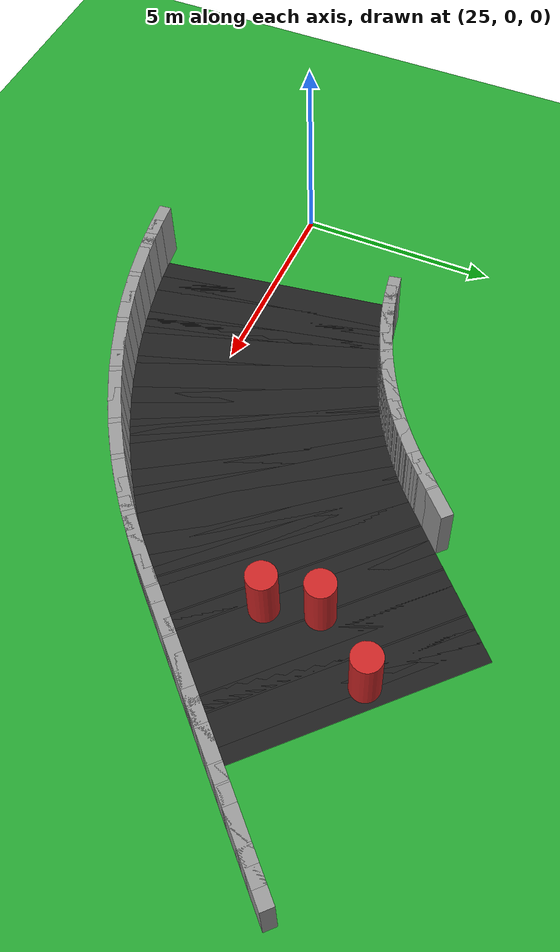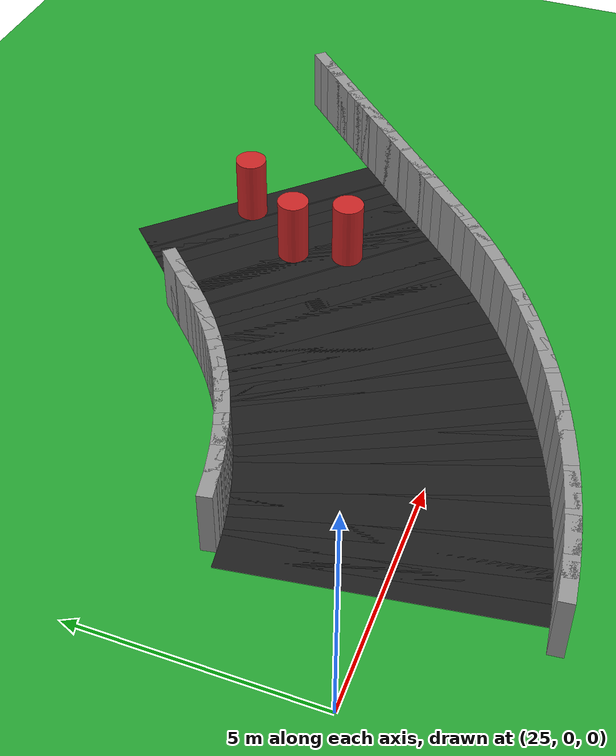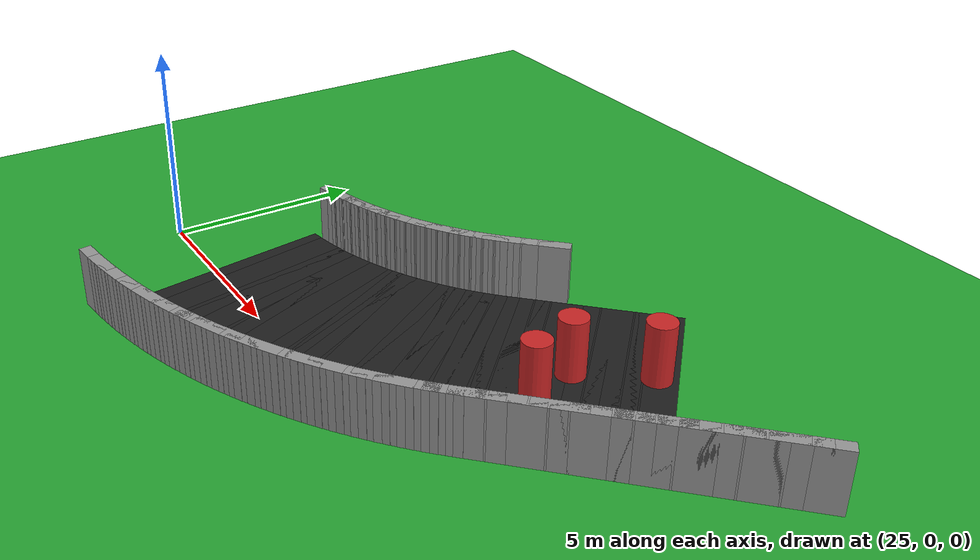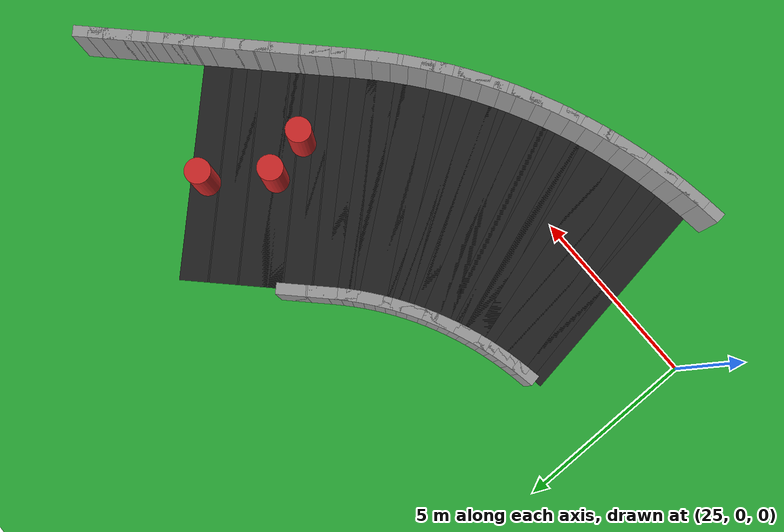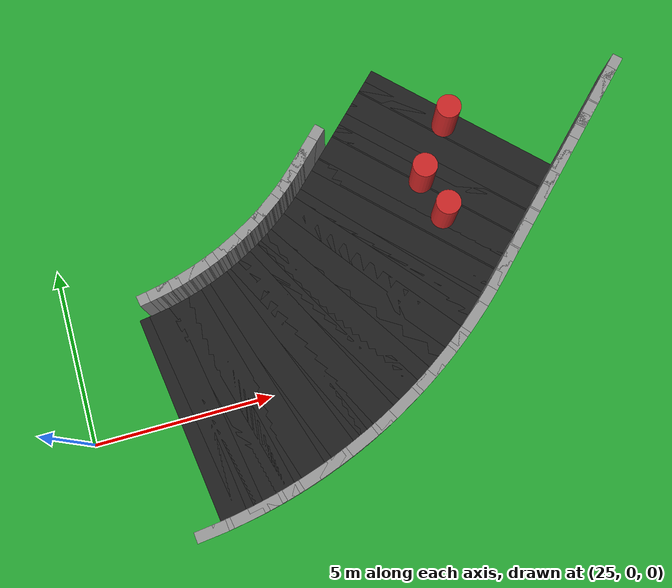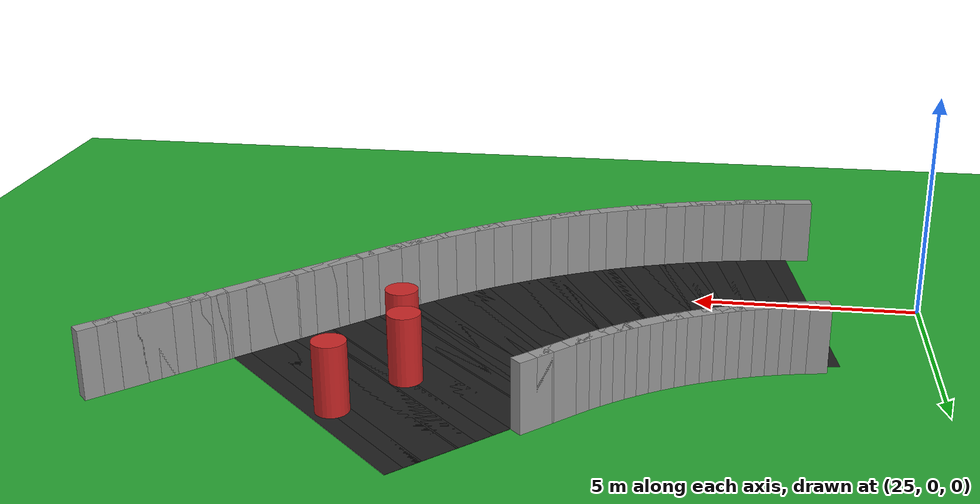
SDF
<sdf version="1.6">
 <world name="obstacle_mid">
  <include><uri>model://sun</uri></include>
  <model name="ground_plane">
   <static>true</static>
   <link name="link">
    <collision name="collision">
     <surface><friction><ode><mu>100</mu><mu2>50</mu2></ode></friction></surface>
     <geometry><plane><normal>0 0 1</normal><size>120 120</size></plane></geometry>
    </collision>
    <visual name="visual">
     <geometry><plane><normal>0 0 1</normal><size>120 120</size></plane></geometry>
     <material>
      <script><uri>file://media/materials/scripts/gazebo.material</uri><name>Gazebo/Green</name></script>
     </material>
    </visual>
   </link>
  </model>
  <model name="curbR_68">
   <static>true</static>
   <pose>27.731 -3.049 0.750 0 0 0.11454</pose>
   <link name="link">
    <collision name="collision"><geometry><box><size>0.856 0.300 1.500</size></box></geometry></collision>
    <visual name="visual">
     <geometry><box><size>0.856 0.300 1.500</size></box></geometry>
     <material>
      <script><uri>file://media/materials/scripts/gazebo.material</uri><name>Gazebo/Grey</name></script>
     </material>
    </visual>
   </link>
  </model>
  <model name="asphalt_69">
   <static>true</static>
   <pose>27.761 0.131 0.005 0 0 0.14726</pose>
   <link name="link">
    <visual name="visual">
     <geometry><box><size>0.753 6.000 0.010</size></box></geometry>
     <material>
      <script><uri>file://media/materials/scripts/gazebo.material</uri><name>Gazebo/Black</name></script>
     </material>
    </visual>
   </link>
  </model>
  <model name="curbR_69">
   <static>true</static>
   <pose>28.223 -2.984 0.750 0 0 0.14726</pose>
   <link name="link">
    <collision name="collision"><geometry><box><size>0.856 0.300 1.500</size></box></geometry></collision>
    <visual name="visual">
     <geometry><box><size>0.856 0.300 1.500</size></box></geometry>
     <material>
      <script><uri>file://media/materials/scripts/gazebo.material</uri><name>Gazebo/Grey</name></script>
     </material>
    </visual>
   </link>
  </model>
  <model name="asphalt_70">
   <static>true</static>
   <pose>28.148 0.195 0.005 0 0 0.17999</pose>
   <link name="link">
    <visual name="visual">
     <geometry><box><size>0.753 6.000 0.010</size></box></geometry>
     <material>
      <script><uri>file://media/materials/scripts/gazebo.material</uri><name>Gazebo/Black</name></script>
     </material>
    </visual>
   </link>
  </model>
  <model name="curbL_70">
   <static>true</static>
   <pose>27.584 3.294 0.750 0 0 0.17999</pose>
   <link name="link">
    <collision name="collision"><geometry><box><size>0.650 0.300 1.500</size></box></geometry></collision>
    <visual name="visual">
     <geometry><box><size>0.650 0.300 1.500</size></box></geometry>
     <material>
      <script><uri>file://media/materials/scripts/gazebo.material</uri><name>Gazebo/Grey</name></script>
     </material>
    </visual>
   </link>
  </model>
  <model name="curbR_70">
   <static>true</static>
   <pose>28.712 -2.903 0.750 0 0 0.17999</pose>
   <link name="link">
    <collision name="collision"><geometry><box><size>0.856 0.300 1.500</size></box></geometry></collision>
    <visual name="visual">
     <geometry><box><size>0.856 0.300 1.500</size></box></geometry>
     <material>
      <script><uri>file://media/materials/scripts/gazebo.material</uri><name>Gazebo/Grey</name></script>
     </material>
    </visual>
   </link>
  </model>
  <model name="asphalt_71">
   <static>true</static>
   <pose>28.533 0.272 0.005 0 0 0.21271</pose>
   <link name="link">
    <visual name="visual">
     <geometry><box><size>0.753 6.000 0.010</size></box></geometry>
     <material>
      <script><uri>file://media/materials/scripts/gazebo.material</uri><name>Gazebo/Black</name></script>
     </material>
    </visual>
   </link>
  </model>
  <model name="curbL_71">
   <static>true</static>
   <pose>27.868 3.351 0.750 0 0 0.21271</pose>
   <link name="link">
    <collision name="collision"><geometry><box><size>0.650 0.300 1.500</size></box></geometry></collision>
    <visual name="visual">
     <geometry><box><size>0.650 0.300 1.500</size></box></geometry>
     <material>
      <script><uri>file://media/materials/scripts/gazebo.material</uri><name>Gazebo/Grey</name></script>
     </material>
    </visual>
   </link>
  </model>
  <model name="curbR_71">
   <static>true</static>
   <pose>29.198 -2.807 0.750 0 0 0.21271</pose>
   <link name="link">
    <collision name="collision"><geometry><box><size>0.856 0.300 1.500</size></box></geometry></collision>
    <visual name="visual">
     <geometry><box><size>0.856 0.300 1.500</size></box></geometry>
     <material>
      <script><uri>file://media/materials/scripts/gazebo.material</uri><name>Gazebo/Grey</name></script>
     </material>
    </visual>
   </link>
  </model>
  <model name="asphalt_72">
   <static>true</static>
   <pose>28.916 0.361 0.005 0 0 0.24544</pose>
   <link name="link">
    <visual name="visual">
     <geometry><box><size>0.753 6.000 0.010</size></box></geometry>
     <material>
      <script><uri>file://media/materials/scripts/gazebo.material</uri><name>Gazebo/Black</name></script>
     </material>
    </visual>
   </link>
  </model>
  <model name="curbL_72">
   <static>true</static>
   <pose>28.150 3.416 0.750 0 0 0.24544</pose>
   <link name="link">
    <collision name="collision"><geometry><box><size>0.650 0.300 1.500</size></box></geometry></collision>
    <visual name="visual">
     <geometry><box><size>0.650 0.300 1.500</size></box></geometry>
     <material>
      <script><uri>file://media/materials/scripts/gazebo.material</uri><name>Gazebo/Grey</name></script>
     </material>
    </visual>
   </link>
  </model>
  <model name="curbR_72">
   <static>true</static>
   <pose>29.681 -2.694 0.750 0 0 0.24544</pose>
   <link name="link">
    <collision name="collision"><geometry><box><size>0.856 0.300 1.500</size></box></geometry></collision>
    <visual name="visual">
     <geometry><box><size>0.856 0.300 1.500</size></box></geometry>
     <material>
      <script><uri>file://media/materials/scripts/gazebo.material</uri><name>Gazebo/Grey</name></script>
     </material>
    </visual>
   </link>
  </model>
  <model name="asphalt_73">
   <static>true</static>
   <pose>29.295 0.463 0.005 0 0 0.27816</pose>
   <link name="link">
    <visual name="visual">
     <geometry><box><size>0.753 6.000 0.010</size></box></geometry>
     <material>
      <script><uri>file://media/materials/scripts/gazebo.material</uri><name>Gazebo/Black</name></script>
     </material>
    </visual>
   </link>
  </model>
  <model name="curbL_73">
   <static>true</static>
   <pose>28.430 3.491 0.750 0 0 0.27816</pose>
   <link name="link">
    <collision name="collision"><geometry><box><size>0.650 0.300 1.500</size></box></geometry></collision>
    <visual name="visual">
     <geometry><box><size>0.650 0.300 1.500</size></box></geometry>
     <material>
      <script><uri>file://media/materials/scripts/gazebo.material</uri><name>Gazebo/Grey</name></script>
     </material>
    </visual>
   </link>
  </model>
  <model name="curbR_73">
   <static>true</static>
   <pose>30.160 -2.566 0.750 0 0 0.27816</pose>
   <link name="link">
    <collision name="collision"><geometry><box><size>0.856 0.300 1.500</size></box></geometry></collision>
    <visual name="visual">
     <geometry><box><size>0.856 0.300 1.500</size></box></geometry>
     <material>
      <script><uri>file://media/materials/scripts/gazebo.material</uri><name>Gazebo/Grey</name></script>
     </material>
    </visual>
   </link>
  </model>
  <model name="asphalt_74">
   <static>true</static>
   <pose>29.671 0.577 0.005 0 0 0.31089</pose>
   <link name="link">
    <visual name="visual">
     <geometry><box><size>0.753 6.000 0.010</size></box></geometry>
     <material>
      <script><uri>file://media/materials/scripts/gazebo.material</uri><name>Gazebo/Black</name></script>
     </material>
    </visual>
   </link>
  </model>
  <model name="curbL_74">
   <static>true</static>
   <pose>28.707 3.575 0.750 0 0 0.31089</pose>
   <link name="link">
    <collision name="collision"><geometry><box><size>0.650 0.300 1.500</size></box></geometry></collision>
    <visual name="visual">
     <geometry><box><size>0.650 0.300 1.500</size></box></geometry>
     <material>
      <script><uri>file://media/materials/scripts/gazebo.material</uri><name>Gazebo/Grey</name></script>
     </material>
    </visual>
   </link>
  </model>
  <model name="curbR_74">
   <static>true</static>
   <pose>30.634 -2.422 0.750 0 0 0.31089</pose>
   <link name="link">
    <collision name="collision"><geometry><box><size>0.856 0.300 1.500</size></box></geometry></collision>
    <visual name="visual">
     <geometry><box><size>0.856 0.300 1.500</size></box></geometry>
     <material>
      <script><uri>file://media/materials/scripts/gazebo.material</uri><name>Gazebo/Grey</name></script>
     </material>
    </visual>
   </link>
  </model>
  <model name="asphalt_75">
   <static>true</static>
   <pose>30.042 0.703 0.005 0 0 0.34361</pose>
   <link name="link">
    <visual name="visual">
     <geometry><box><size>0.753 6.000 0.010</size></box></geometry>
     <material>
      <script><uri>file://media/materials/scripts/gazebo.material</uri><name>Gazebo/Black</name></script>
     </material>
    </visual>
   </link>
  </model>
  <model name="curbL_75">
   <static>true</static>
   <pose>28.981 3.668 0.750 0 0 0.34361</pose>
   <link name="link">
    <collision name="collision"><geometry><box><size>0.650 0.300 1.500</size></box></geometry></collision>
    <visual name="visual">
     <geometry><box><size>0.650 0.300 1.500</size></box></geometry>
     <material>
      <script><uri>file://media/materials/scripts/gazebo.material</uri><name>Gazebo/Grey</name></script>
     </material>
    </visual>
   </link>
  </model>
  <model name="curbR_75">
   <static>true</static>
   <pose>31.103 -2.262 0.750 0 0 0.34361</pose>
   <link name="link">
    <collision name="collision"><geometry><box><size>0.856 0.300 1.500</size></box></geometry></collision>
    <visual name="visual">
     <geometry><box><size>0.856 0.300 1.500</size></box></geometry>
     <material>
      <script><uri>file://media/materials/scripts/gazebo.material</uri><name>Gazebo/Grey</name></script>
     </material>
    </visual>
   </link>
  </model>
  <model name="asphalt_76">
   <static>true</static>
   <pose>30.410 0.841 0.005 0 0 0.37634</pose>
   <link name="link">
    <visual name="visual">
     <geometry><box><size>0.753 6.000 0.010</size></box></geometry>
     <material>
      <script><uri>file://media/materials/scripts/gazebo.material</uri><name>Gazebo/Black</name></script>
     </material>
    </visual>
   </link>
  </model>
  <model name="curbL_76">
   <static>true</static>
   <pose>29.252 3.770 0.750 0 0 0.37634</pose>
   <link name="link">
    <collision name="collision"><geometry><box><size>0.650 0.300 1.500</size></box></geometry></collision>
    <visual name="visual">
     <geometry><box><size>0.650 0.300 1.500</size></box></geometry>
     <material>
      <script><uri>file://media/materials/scripts/gazebo.material</uri><name>Gazebo/Grey</name></script>
     </material>
    </visual>
   </link>
  </model>
  <model name="curbR_76">
   <static>true</static>
   <pose>31.567 -2.088 0.750 0 0 0.37634</pose>
   <link name="link">
    <collision name="collision"><geometry><box><size>0.856 0.300 1.500</size></box></geometry></collision>
    <visual name="visual">
     <geometry><box><size>0.856 0.300 1.500</size></box></geometry>
     <material>
      <script><uri>file://media/materials/scripts/gazebo.material</uri><name>Gazebo/Grey</name></script>
     </material>
    </visual>
   </link>
  </model>
  <model name="asphalt_77">
   <static>true</static>
   <pose>30.773 0.992 0.005 0 0 0.40906</pose>
   <link name="link">
    <visual name="visual">
     <geometry><box><size>0.753 6.000 0.010</size></box></geometry>
     <material>
      <script><uri>file://media/materials/scripts/gazebo.material</uri><name>Gazebo/Black</name></script>
     </material>
    </visual>
   </link>
  </model>
  <model name="curbL_77">
   <static>true</static>
   <pose>29.520 3.881 0.750 0 0 0.40906</pose>
   <link name="link">
    <collision name="collision"><geometry><box><size>0.650 0.300 1.500</size></box></geometry></collision>
    <visual name="visual">
     <geometry><box><size>0.650 0.300 1.500</size></box></geometry>
     <material>
      <script><uri>file://media/materials/scripts/gazebo.material</uri><name>Gazebo/Grey</name></script>
     </material>
    </visual>
   </link>
  </model>
  <model name="curbR_77">
   <static>true</static>
   <pose>32.025 -1.898 0.750 0 0 0.40906</pose>
   <link name="link">
    <collision name="collision"><geometry><box><size>0.856 0.300 1.500</size></box></geometry></collision>
    <visual name="visual">
     <geometry><box><size>0.856 0.300 1.500</size></box></geometry>
     <material>
      <script><uri>file://media/materials/scripts/gazebo.material</uri><name>Gazebo/Grey</name></script>
     </material>
    </visual>
   </link>
  </model>
  <model name="asphalt_78">
   <static>true</static>
   <pose>31.130 1.154 0.005 0 0 0.44179</pose>
   <link name="link">
    <visual name="visual">
     <geometry><box><size>0.753 6.000 0.010</size></box></geometry>
     <material>
      <script><uri>file://media/materials/scripts/gazebo.material</uri><name>Gazebo/Black</name></script>
     </material>
    </visual>
   </link>
  </model>
  <model name="curbL_78">
   <static>true</static>
   <pose>29.784 4.001 0.750 0 0 0.44179</pose>
   <link name="link">
    <collision name="collision"><geometry><box><size>0.650 0.300 1.500</size></box></geometry></collision>
    <visual name="visual">
     <geometry><box><size>0.650 0.300 1.500</size></box></geometry>
     <material>
      <script><uri>file://media/materials/scripts/gazebo.material</uri><name>Gazebo/Grey</name></script>
     </material>
    </visual>
   </link>
  </model>
  <model name="curbR_78">
   <static>true</static>
   <pose>32.477 -1.694 0.750 0 0 0.44179</pose>
   <link name="link">
    <collision name="collision"><geometry><box><size>0.856 0.300 1.500</size></box></geometry></collision>
    <visual name="visual">
     <geometry><box><size>0.856 0.300 1.500</size></box></geometry>
     <material>
      <script><uri>file://media/materials/scripts/gazebo.material</uri><name>Gazebo/Grey</name></script>
     </material>
    </visual>
   </link>
  </model>
  <model name="asphalt_79">
   <static>true</static>
   <pose>31.482 1.327 0.005 0 0 0.47451</pose>
   <link name="link">
    <visual name="visual">
     <geometry><box><size>0.753 6.000 0.010</size></box></geometry>
     <material>
      <script><uri>file://media/materials/scripts/gazebo.material</uri><name>Gazebo/Black</name></script>
     </material>
    </visual>
   </link>
  </model>
  <model name="curbL_79">
   <static>true</static>
   <pose>30.043 4.129 0.750 0 0 0.47451</pose>
   <link name="link">
    <collision name="collision"><geometry><box><size>0.650 0.300 1.500</size></box></geometry></collision>
    <visual name="visual">
     <geometry><box><size>0.650 0.300 1.500</size></box></geometry>
     <material>
      <script><uri>file://media/materials/scripts/gazebo.material</uri><name>Gazebo/Grey</name></script>
     </material>
    </visual>
   </link>
  </model>
  <model name="curbR_79">
   <static>true</static>
   <pose>32.921 -1.474 0.750 0 0 0.47451</pose>
   <link name="link">
    <collision name="collision"><geometry><box><size>0.856 0.300 1.500</size></box></geometry></collision>
    <visual name="visual">
     <geometry><box><size>0.856 0.300 1.500</size></box></geometry>
     <material>
      <script><uri>file://media/materials/scripts/gazebo.material</uri><name>Gazebo/Grey</name></script>
     </material>
    </visual>
   </link>
  </model>
  <model name="asphalt_80">
   <static>true</static>
   <pose>31.829 1.512 0.005 0 0 0.50724</pose>
   <link name="link">
    <visual name="visual">
     <geometry><box><size>0.753 6.000 0.010</size></box></geometry>
     <material>
      <script><uri>file://media/materials/scripts/gazebo.material</uri><name>Gazebo/Black</name></script>
     </material>
    </visual>
   </link>
  </model>
  <model name="curbL_80">
   <static>true</static>
   <pose>30.299 4.265 0.750 0 0 0.50724</pose>
   <link name="link">
    <collision name="collision"><geometry><box><size>0.650 0.300 1.500</size></box></geometry></collision>
    <visual name="visual">
     <geometry><box><size>0.650 0.300 1.500</size></box></geometry>
     <material>
      <script><uri>file://media/materials/scripts/gazebo.material</uri><name>Gazebo/Grey</name></script>
     </material>
    </visual>
   </link>
  </model>
  <model name="curbR_80">
   <static>true</static>
   <pose>33.359 -1.241 0.750 0 0 0.50724</pose>
   <link name="link">
    <collision name="collision"><geometry><box><size>0.856 0.300 1.500</size></box></geometry></collision>
    <visual name="visual">
     <geometry><box><size>0.856 0.300 1.500</size></box></geometry>
     <material>
      <script><uri>file://media/materials/scripts/gazebo.material</uri><name>Gazebo/Grey</name></script>
     </material>
    </visual>
   </link>
  </model>
  <model name="asphalt_81">
   <static>true</static>
   <pose>32.169 1.709 0.005 0 0 0.53996</pose>
   <link name="link">
    <visual name="visual">
     <geometry><box><size>0.753 6.000 0.010</size></box></geometry>
     <material>
      <script><uri>file://media/materials/scripts/gazebo.material</uri><name>Gazebo/Black</name></script>
     </material>
    </visual>
   </link>
  </model>
  <model name="curbL_81">
   <static>true</static>
   <pose>30.549 4.410 0.750 0 0 0.53996</pose>
   <link name="link">
    <collision name="collision"><geometry><box><size>0.650 0.300 1.500</size></box></geometry></collision>
    <visual name="visual">
     <geometry><box><size>0.650 0.300 1.500</size></box></geometry>
     <material>
      <script><uri>file://media/materials/scripts/gazebo.material</uri><name>Gazebo/Grey</name></script>
     </material>
    </visual>
   </link>
  </model>
  <model name="curbR_81">
   <static>true</static>
   <pose>33.788 -0.993 0.750 0 0 0.53996</pose>
   <link name="link">
    <collision name="collision"><geometry><box><size>0.856 0.300 1.500</size></box></geometry></collision>
    <visual name="visual">
     <geometry><box><size>0.856 0.300 1.500</size></box></geometry>
     <material>
      <script><uri>file://media/materials/scripts/gazebo.material</uri><name>Gazebo/Grey</name></script>
     </material>
    </visual>
   </link>
  </model>
  <model name="asphalt_82">
   <static>true</static>
   <pose>32.502 1.916 0.005 0 0 0.57269</pose>
   <link name="link">
    <visual name="visual">
     <geometry><box><size>0.753 6.000 0.010</size></box></geometry>
     <material>
      <script><uri>file://media/materials/scripts/gazebo.material</uri><name>Gazebo/Black</name></script>
     </material>
    </visual>
   </link>
  </model>
  <model name="curbL_82">
   <static>true</static>
   <pose>30.795 4.563 0.750 0 0 0.57269</pose>
   <link name="link">
    <collision name="collision"><geometry><box><size>0.650 0.300 1.500</size></box></geometry></collision>
    <visual name="visual">
     <geometry><box><size>0.650 0.300 1.500</size></box></geometry>
     <material>
      <script><uri>file://media/materials/scripts/gazebo.material</uri><name>Gazebo/Grey</name></script>
     </material>
    </visual>
   </link>
  </model>
  <model name="curbR_82">
   <static>true</static>
   <pose>34.209 -0.731 0.750 0 0 0.57269</pose>
   <link name="link">
    <collision name="collision"><geometry><box><size>0.856 0.300 1.500</size></box></geometry></collision>
    <visual name="visual">
     <geometry><box><size>0.856 0.300 1.500</size></box></geometry>
     <material>
      <script><uri>file://media/materials/scripts/gazebo.material</uri><name>Gazebo/Grey</name></script>
     </material>
    </visual>
   </link>
  </model>
  <model name="asphalt_83">
   <static>true</static>
   <pose>32.829 2.134 0.005 0 0 0.60541</pose>
   <link name="link">
    <visual name="visual">
     <geometry><box><size>0.753 6.000 0.010</size></box></geometry>
     <material>
      <script><uri>file://media/materials/scripts/gazebo.material</uri><name>Gazebo/Black</name></script>
     </material>
    </visual>
   </link>
  </model>
  <model name="curbL_83">
   <static>true</static>
   <pose>31.036 4.724 0.750 0 0 0.60541</pose>
   <link name="link">
    <collision name="collision"><geometry><box><size>0.650 0.300 1.500</size></box></geometry></collision>
    <visual name="visual">
     <geometry><box><size>0.650 0.300 1.500</size></box></geometry>
     <material>
      <script><uri>file://media/materials/scripts/gazebo.material</uri><name>Gazebo/Grey</name></script>
     </material>
    </visual>
   </link>
  </model>
  <model name="curbR_83">
   <static>true</static>
   <pose>34.621 -0.456 0.750 0 0 0.60541</pose>
   <link name="link">
    <collision name="collision"><geometry><box><size>0.856 0.300 1.500</size></box></geometry></collision>
    <visual name="visual">
     <geometry><box><size>0.856 0.300 1.500</size></box></geometry>
     <material>
      <script><uri>file://media/materials/scripts/gazebo.material</uri><name>Gazebo/Grey</name></script>
     </material>
    </visual>
   </link>
  </model>
  <model name="asphalt_84">
   <static>true</static>
   <pose>33.148 2.363 0.005 0 0 0.63814</pose>
   <link name="link">
    <visual name="visual">
     <geometry><box><size>0.753 6.000 0.010</size></box></geometry>
     <material>
      <script><uri>file://media/materials/scripts/gazebo.material</uri><name>Gazebo/Black</name></script>
     </material>
    </visual>
   </link>
  </model>
  <model name="curbL_84">
   <static>true</static>
   <pose>31.272 4.893 0.750 0 0 0.63814</pose>
   <link name="link">
    <collision name="collision"><geometry><box><size>0.650 0.300 1.500</size></box></geometry></collision>
    <visual name="visual">
     <geometry><box><size>0.650 0.300 1.500</size></box></geometry>
     <material>
      <script><uri>file://media/materials/scripts/gazebo.material</uri><name>Gazebo/Grey</name></script>
     </material>
    </visual>
   </link>
  </model>
  <model name="curbR_84">
   <static>true</static>
   <pose>35.024 -0.167 0.750 0 0 0.63814</pose>
   <link name="link">
    <collision name="collision"><geometry><box><size>0.856 0.300 1.500</size></box></geometry></collision>
    <visual name="visual">
     <geometry><box><size>0.856 0.300 1.500</size></box></geometry>
     <material>
      <script><uri>file://media/materials/scripts/gazebo.material</uri><name>Gazebo/Grey</name></script>
     </material>
    </visual>
   </link>
  </model>
  <model name="asphalt_85">
   <static>true</static>
   <pose>33.459 2.602 0.005 0 0 0.67086</pose>
   <link name="link">
    <visual name="visual">
     <geometry><box><size>0.753 6.000 0.010</size></box></geometry>
     <material>
      <script><uri>file://media/materials/scripts/gazebo.material</uri><name>Gazebo/Black</name></script>
     </material>
    </visual>
   </link>
  </model>
  <model name="curbL_85">
   <static>true</static>
   <pose>31.501 5.069 0.750 0 0 0.67086</pose>
   <link name="link">
    <collision name="collision"><geometry><box><size>0.650 0.300 1.500</size></box></geometry></collision>
    <visual name="visual">
     <geometry><box><size>0.650 0.300 1.500</size></box></geometry>
     <material>
      <script><uri>file://media/materials/scripts/gazebo.material</uri><name>Gazebo/Grey</name></script>
     </material>
    </visual>
   </link>
  </model>
  <model name="curbR_85">
   <static>true</static>
   <pose>35.417 0.135 0.750 0 0 0.67086</pose>
   <link name="link">
    <collision name="collision"><geometry><box><size>0.856 0.300 1.500</size></box></geometry></collision>
    <visual name="visual">
     <geometry><box><size>0.856 0.300 1.500</size></box></geometry>
     <material>
      <script><uri>file://media/materials/scripts/gazebo.material</uri><name>Gazebo/Grey</name></script>
     </material>
    </visual>
   </link>
  </model>
  <model name="asphalt_86">
   <static>true</static>
   <pose>33.763 2.851 0.005 0 0 0.70359</pose>
   <link name="link">
    <visual name="visual">
     <geometry><box><size>0.753 6.000 0.010</size></box></geometry>
     <material>
      <script><uri>file://media/materials/scripts/gazebo.material</uri><name>Gazebo/Black</name></script>
     </material>
    </visual>
   </link>
  </model>
  <model name="curbL_86">
   <static>true</static>
   <pose>31.725 5.253 0.750 0 0 0.70359</pose>
   <link name="link">
    <collision name="collision"><geometry><box><size>0.650 0.300 1.500</size></box></geometry></collision>
    <visual name="visual">
     <geometry><box><size>0.650 0.300 1.500</size></box></geometry>
     <material>
      <script><uri>file://media/materials/scripts/gazebo.material</uri><name>Gazebo/Grey</name></script>
     </material>
    </visual>
   </link>
  </model>
  <model name="curbR_86">
   <static>true</static>
   <pose>35.800 0.449 0.750 0 0 0.70359</pose>
   <link name="link">
    <collision name="collision"><geometry><box><size>0.856 0.300 1.500</size></box></geometry></collision>
    <visual name="visual">
     <geometry><box><size>0.856 0.300 1.500</size></box></geometry>
     <material>
      <script><uri>file://media/materials/scripts/gazebo.material</uri><name>Gazebo/Grey</name></script>
     </material>
    </visual>
   </link>
  </model>
  <model name="asphalt_87">
   <static>true</static>
   <pose>34.058 3.110 0.005 0 0 0.73631</pose>
   <link name="link">
    <visual name="visual">
     <geometry><box><size>0.753 6.000 0.010</size></box></geometry>
     <material>
      <script><uri>file://media/materials/scripts/gazebo.material</uri><name>Gazebo/Black</name></script>
     </material>
    </visual>
   </link>
  </model>
  <model name="curbL_87">
   <static>true</static>
   <pose>31.943 5.444 0.750 0 0 0.73631</pose>
   <link name="link">
    <collision name="collision"><geometry><box><size>0.650 0.300 1.500</size></box></geometry></collision>
    <visual name="visual">
     <geometry><box><size>0.650 0.300 1.500</size></box></geometry>
     <material>
      <script><uri>file://media/materials/scripts/gazebo.material</uri><name>Gazebo/Grey</name></script>
     </material>
    </visual>
   </link>
  </model>
  <model name="curbR_87">
   <static>true</static>
   <pose>36.173 0.776 0.750 0 0 0.73631</pose>
   <link name="link">
    <collision name="collision"><geometry><box><size>0.856 0.300 1.500</size></box></geometry></collision>
    <visual name="visual">
     <geometry><box><size>0.856 0.300 1.500</size></box></geometry>
     <material>
      <script><uri>file://media/materials/scripts/gazebo.material</uri><name>Gazebo/Grey</name></script>
     </material>
    </visual>
   </link>
  </model>
  <model name="asphalt_88">
   <static>true</static>
   <pose>34.345 3.378 0.005 0 0 0.76904</pose>
   <link name="link">
    <visual name="visual">
     <geometry><box><size>0.753 6.000 0.010</size></box></geometry>
     <material>
      <script><uri>file://media/materials/scripts/gazebo.material</uri><name>Gazebo/Black</name></script>
     </material>
    </visual>
   </link>
  </model>
  <model name="curbL_88">
   <static>true</static>
   <pose>32.154 5.642 0.750 0 0 0.76904</pose>
   <link name="link">
    <collision name="collision"><geometry><box><size>0.650 0.300 1.500</size></box></geometry></collision>
    <visual name="visual">
     <geometry><box><size>0.650 0.300 1.500</size></box></geometry>
     <material>
      <script><uri>file://media/materials/scripts/gazebo.material</uri><name>Gazebo/Grey</name></script>
     </material>
    </visual>
   </link>
  </model>
  <model name="curbR_88">
   <static>true</static>
   <pose>36.535 1.115 0.750 0 0 0.76904</pose>
   <link name="link">
    <collision name="collision"><geometry><box><size>0.856 0.300 1.500</size></box></geometry></collision>
    <visual name="visual">
     <geometry><box><size>0.856 0.300 1.500</size></box></geometry>
     <material>
      <script><uri>file://media/materials/scripts/gazebo.material</uri><name>Gazebo/Grey</name></script>
     </material>
    </visual>
   </link>
  </model>
  <model name="asphalt_89">
   <static>true</static>
   <pose>34.627 3.656 0.005 0 0 0.78540</pose>
   <link name="link">
    <visual name="visual">
     <geometry><box><size>0.760 6.000 0.010</size></box></geometry>
     <material>
      <script><uri>file://media/materials/scripts/gazebo.material</uri><name>Gazebo/Black</name></script>
     </material>
    </visual>
   </link>
  </model>
  <model name="curbL_89">
   <static>true</static>
   <pose>32.400 5.884 0.750 0 0 0.78540</pose>
   <link name="link">
    <collision name="collision"><geometry><box><size>0.760 0.300 1.500</size></box></geometry></collision>
    <visual name="visual">
     <geometry><box><size>0.760 0.300 1.500</size></box></geometry>
     <material>
      <script><uri>file://media/materials/scripts/gazebo.material</uri><name>Gazebo/Grey</name></script>
     </material>
    </visual>
   </link>
  </model>
  <model name="curbR_89">
   <static>true</static>
   <pose>36.854 1.429 0.750 0 0 0.78540</pose>
   <link name="link">
    <collision name="collision"><geometry><box><size>0.760 0.300 1.500</size></box></geometry></collision>
    <visual name="visual">
     <geometry><box><size>0.760 0.300 1.500</size></box></geometry>
     <material>
      <script><uri>file://media/materials/scripts/gazebo.material</uri><name>Gazebo/Grey</name></script>
     </material>
    </visual>
   </link>
  </model>
  <model name="asphalt_90">
   <static>true</static>
   <pose>34.910 3.939 0.005 0 0 0.78540</pose>
   <link name="link">
    <visual name="visual">
     <geometry><box><size>0.760 6.000 0.010</size></box></geometry>
     <material>
      <script><uri>file://media/materials/scripts/gazebo.material</uri><name>Gazebo/Black</name></script>
     </material>
    </visual>
   </link>
  </model>
  <model name="curbL_90">
   <static>true</static>
   <pose>32.683 6.167 0.750 0 0 0.78540</pose>
   <link name="link">
    <collision name="collision"><geometry><box><size>0.760 0.300 1.500</size></box></geometry></collision>
    <visual name="visual">
     <geometry><box><size>0.760 0.300 1.500</size></box></geometry>
     <material>
      <script><uri>file://media/materials/scripts/gazebo.material</uri><name>Gazebo/Grey</name></script>
     </material>
    </visual>
   </link>
  </model>
  <model name="curbR_90">
   <static>true</static>
   <pose>37.137 1.712 0.750 0 0 0.78540</pose>
   <link name="link">
    <collision name="collision"><geometry><box><size>0.760 0.300 1.500</size></box></geometry></collision>
    <visual name="visual">
     <geometry><box><size>0.760 0.300 1.500</size></box></geometry>
     <material>
      <script><uri>file://media/materials/scripts/gazebo.material</uri><name>Gazebo/Grey</name></script>
     </material>
    </visual>
   </link>
  </model>
  <model name="asphalt_91">
   <static>true</static>
   <pose>35.193 4.222 0.005 0 0 0.78540</pose>
   <link name="link">
    <visual name="visual">
     <geometry><box><size>0.760 6.000 0.010</size></box></geometry>
     <material>
      <script><uri>file://media/materials/scripts/gazebo.material</uri><name>Gazebo/Black</name></script>
     </material>
    </visual>
   </link>
  </model>
  <model name="curbL_91">
   <static>true</static>
   <pose>32.965 6.449 0.750 0 0 0.78540</pose>
   <link name="link">
    <collision name="collision"><geometry><box><size>0.760 0.300 1.500</size></box></geometry></collision>
    <visual name="visual">
     <geometry><box><size>0.760 0.300 1.500</size></box></geometry>
     <material>
      <script><uri>file://media/materials/scripts/gazebo.material</uri><name>Gazebo/Grey</name></script>
     </material>
    </visual>
   </link>
  </model>
  <model name="curbR_91">
   <static>true</static>
   <pose>37.420 1.995 0.750 0 0 0.78540</pose>
   <link name="link">
    <collision name="collision"><geometry><box><size>0.760 0.300 1.500</size></box></geometry></collision>
    <visual name="visual">
     <geometry><box><size>0.760 0.300 1.500</size></box></geometry>
     <material>
      <script><uri>file://media/materials/scripts/gazebo.material</uri><name>Gazebo/Grey</name></script>
     </material>
    </visual>
   </link>
  </model>
  <model name="asphalt_92">
   <static>true</static>
   <pose>35.476 4.505 0.005 0 0 0.78540</pose>
   <link name="link">
    <visual name="visual">
     <geometry><box><size>0.760 6.000 0.010</size></box></geometry>
     <material>
      <script><uri>file://media/materials/scripts/gazebo.material</uri><name>Gazebo/Black</name></script>
     </material>
    </visual>
   </link>
  </model>
  <model name="curbR_92">
   <static>true</static>
   <pose>37.703 2.277 0.750 0 0 0.78540</pose>
   <link name="link">
    <collision name="collision"><geometry><box><size>0.760 0.300 1.500</size></box></geometry></collision>
    <visual name="visual">
     <geometry><box><size>0.760 0.300 1.500</size></box></geometry>
     <material>
      <script><uri>file://media/materials/scripts/gazebo.material</uri><name>Gazebo/Grey</name></script>
     </material>
    </visual>
   </link>
  </model>
  <model name="asphalt_93">
   <static>true</static>
   <pose>35.758 4.788 0.005 0 0 0.78540</pose>
   <link name="link">
    <visual name="visual">
     <geometry><box><size>0.760 6.000 0.010</size></box></geometry>
     <material>
      <script><uri>file://media/materials/scripts/gazebo.material</uri><name>Gazebo/Black</name></script>
     </material>
    </visual>
   </link>
  </model>
  <model name="curbR_93">
   <static>true</static>
   <pose>37.986 2.560 0.750 0 0 0.78540</pose>
   <link name="link">
    <collision name="collision"><geometry><box><size>0.760 0.300 1.500</size></box></geometry></collision>
    <visual name="visual">
     <geometry><box><size>0.760 0.300 1.500</size></box></geometry>
     <material>
      <script><uri>file://media/materials/scripts/gazebo.material</uri><name>Gazebo/Grey</name></script>
     </material>
    </visual>
   </link>
  </model>
  <model name="asphalt_94">
   <static>true</static>
   <pose>36.041 5.071 0.005 0 0 0.78540</pose>
   <link name="link">
    <visual name="visual">
     <geometry><box><size>0.760 6.000 0.010</size></box></geometry>
     <material>
      <script><uri>file://media/materials/scripts/gazebo.material</uri><name>Gazebo/Black</name></script>
     </material>
    </visual>
   </link>
  </model>
  <model name="curbR_94">
   <static>true</static>
   <pose>38.269 2.843 0.750 0 0 0.78540</pose>
   <link name="link">
    <collision name="collision"><geometry><box><size>0.760 0.300 1.500</size></box></geometry></collision>
    <visual name="visual">
     <geometry><box><size>0.760 0.300 1.500</size></box></geometry>
     <material>
      <script><uri>file://media/materials/scripts/gazebo.material</uri><name>Gazebo/Grey</name></script>
     </material>
    </visual>
   </link>
  </model>
  <model name="asphalt_95">
   <static>true</static>
   <pose>36.324 5.353 0.005 0 0 0.78540</pose>
   <link name="link">
    <visual name="visual">
     <geometry><box><size>0.760 6.000 0.010</size></box></geometry>
     <material>
      <script><uri>file://media/materials/scripts/gazebo.material</uri><name>Gazebo/Black</name></script>
     </material>
    </visual>
   </link>
  </model>
  <model name="curbR_95">
   <static>true</static>
   <pose>38.552 3.126 0.750 0 0 0.78540</pose>
   <link name="link">
    <collision name="collision"><geometry><box><size>0.760 0.300 1.500</size></box></geometry></collision>
    <visual name="visual">
     <geometry><box><size>0.760 0.300 1.500</size></box></geometry>
     <material>
      <script><uri>file://media/materials/scripts/gazebo.material</uri><name>Gazebo/Grey</name></script>
     </material>
    </visual>
   </link>
  </model>
  <model name="asphalt_96">
   <static>true</static>
   <pose>36.607 5.636 0.005 0 0 0.78540</pose>
   <link name="link">
    <visual name="visual">
     <geometry><box><size>0.760 6.000 0.010</size></box></geometry>
     <material>
      <script><uri>file://media/materials/scripts/gazebo.material</uri><name>Gazebo/Black</name></script>
     </material>
    </visual>
   </link>
  </model>
  <model name="curbR_96">
   <static>true</static>
   <pose>38.834 3.409 0.750 0 0 0.78540</pose>
   <link name="link">
    <collision name="collision"><geometry><box><size>0.760 0.300 1.500</size></box></geometry></collision>
    <visual name="visual">
     <geometry><box><size>0.760 0.300 1.500</size></box></geometry>
     <material>
      <script><uri>file://media/materials/scripts/gazebo.material</uri><name>Gazebo/Grey</name></script>
     </material>
    </visual>
   </link>
  </model>
  <model name="asphalt_97">
   <static>true</static>
   <pose>36.890 5.919 0.005 0 0 0.78540</pose>
   <link name="link">
    <visual name="visual">
     <geometry><box><size>0.760 6.000 0.010</size></box></geometry>
     <material>
      <script><uri>file://media/materials/scripts/gazebo.material</uri><name>Gazebo/Black</name></script>
     </material>
    </visual>
   </link>
  </model>
  <model name="curbR_97">
   <static>true</static>
   <pose>39.117 3.692 0.750 0 0 0.78540</pose>
   <link name="link">
    <collision name="collision"><geometry><box><size>0.760 0.300 1.500</size></box></geometry></collision>
    <visual name="visual">
     <geometry><box><size>0.760 0.300 1.500</size></box></geometry>
     <material>
      <script><uri>file://media/materials/scripts/gazebo.material</uri><name>Gazebo/Grey</name></script>
     </material>
    </visual>
   </link>
  </model>
  <model name="asphalt_98">
   <static>true</static>
   <pose>37.173 6.202 0.005 0 0 0.78540</pose>
   <link name="link">
    <visual name="visual">
     <geometry><box><size>0.760 6.000 0.010</size></box></geometry>
     <material>
      <script><uri>file://media/materials/scripts/gazebo.material</uri><name>Gazebo/Black</name></script>
     </material>
    </visual>
   </link>
  </model>
  <model name="curbR_98">
   <static>true</static>
   <pose>39.400 3.974 0.750 0 0 0.78540</pose>
   <link name="link">
    <collision name="collision"><geometry><box><size>0.760 0.300 1.500</size></box></geometry></collision>
    <visual name="visual">
     <geometry><box><size>0.760 0.300 1.500</size></box></geometry>
     <material>
      <script><uri>file://media/materials/scripts/gazebo.material</uri><name>Gazebo/Grey</name></script>
     </material>
    </visual>
   </link>
  </model>
  <model name="curbR_99">
   <static>true</static>
   <pose>39.683 4.257 0.750 0 0 0.78540</pose>
   <link name="link">
    <collision name="collision"><geometry><box><size>0.760 0.300 1.500</size></box></geometry></collision>
    <visual name="visual">
     <geometry><box><size>0.760 0.300 1.500</size></box></geometry>
     <material>
      <script><uri>file://media/materials/scripts/gazebo.material</uri><name>Gazebo/Grey</name></script>
     </material>
    </visual>
   </link>
  </model>
  <model name="curbR_100">
   <static>true</static>
   <pose>39.966 4.540 0.750 0 0 0.78540</pose>
   <link name="link">
    <collision name="collision"><geometry><box><size>0.760 0.300 1.500</size></box></geometry></collision>
    <visual name="visual">
     <geometry><box><size>0.760 0.300 1.500</size></box></geometry>
     <material>
      <script><uri>file://media/materials/scripts/gazebo.material</uri><name>Gazebo/Grey</name></script>
     </material>
    </visual>
   </link>
  </model>
  <model name="curbR_101">
   <static>true</static>
   <pose>40.249 4.823 0.750 0 0 0.78540</pose>
   <link name="link">
    <collision name="collision"><geometry><box><size>0.760 0.300 1.500</size></box></geometry></collision>
    <visual name="visual">
     <geometry><box><size>0.760 0.300 1.500</size></box></geometry>
     <material>
      <script><uri>file://media/materials/scripts/gazebo.material</uri><name>Gazebo/Grey</name></script>
     </material>
    </visual>
   </link>
  </model>
  <model name="curbR_102">
   <static>true</static>
   <pose>40.531 5.106 0.750 0 0 0.78540</pose>
   <link name="link">
    <collision name="collision"><geometry><box><size>0.760 0.300 1.500</size></box></geometry></collision>
    <visual name="visual">
     <geometry><box><size>0.760 0.300 1.500</size></box></geometry>
     <material>
      <script><uri>file://media/materials/scripts/gazebo.material</uri><name>Gazebo/Grey</name></script>
     </material>
    </visual>
   </link>
  </model>
  <model name="curbR_103">
   <static>true</static>
   <pose>40.814 5.389 0.750 0 0 0.78540</pose>
   <link name="link">
    <collision name="collision"><geometry><box><size>0.760 0.300 1.500</size></box></geometry></collision>
    <visual name="visual">
     <geometry><box><size>0.760 0.300 1.500</size></box></geometry>
     <material>
      <script><uri>file://media/materials/scripts/gazebo.material</uri><name>Gazebo/Grey</name></script>
     </material>
    </visual>
   </link>
  </model>
  <model name="curbR_104">
   <static>true</static>
   <pose>41.097 5.672 0.750 0 0 0.78540</pose>
   <link name="link">
    <collision name="collision"><geometry><box><size>0.760 0.300 1.500</size></box></geometry></collision>
    <visual name="visual">
     <geometry><box><size>0.760 0.300 1.500</size></box></geometry>
     <material>
      <script><uri>file://media/materials/scripts/gazebo.material</uri><name>Gazebo/Grey</name></script>
     </material>
    </visual>
   </link>
  </model>
  <model name="curbR_105">
   <static>true</static>
   <pose>41.380 5.954 0.750 0 0 0.78540</pose>
   <link name="link">
    <collision name="collision"><geometry><box><size>0.760 0.300 1.500</size></box></geometry></collision>
    <visual name="visual">
     <geometry><box><size>0.760 0.300 1.500</size></box></geometry>
     <material>
      <script><uri>file://media/materials/scripts/gazebo.material</uri><name>Gazebo/Grey</name></script>
     </material>
    </visual>
   </link>
  </model>
  <model name="curbR_106">
   <static>true</static>
   <pose>41.663 6.237 0.750 0 0 0.78540</pose>
   <link name="link">
    <collision name="collision"><geometry><box><size>0.760 0.300 1.500</size></box></geometry></collision>
    <visual name="visual">
     <geometry><box><size>0.760 0.300 1.500</size></box></geometry>
     <material>
      <script><uri>file://media/materials/scripts/gazebo.material</uri><name>Gazebo/Grey</name></script>
     </material>
    </visual>
   </link>
  </model>
  <model name="obs_4">
   <static>true</static>
   <pose>36.884 6.344 0.750 0 0 0</pose>
   <link name="link">
    <collision name="collision">
     <geometry><cylinder><radius>0.350</radius><length>1.500</length></cylinder></geometry>
    </collision>
    <visual name="visual">
     <geometry><cylinder><radius>0.350</radius><length>1.500</length></cylinder></geometry>
     <material>
      <script><uri>file://media/materials/scripts/gazebo.material</uri><name>Gazebo/Red</name></script>
     </material>
    </visual>
   </link>
  </model>
  <model name="obs_7">
   <static>true</static>
   <pose>35.750 4.866 0.750 0 0 0</pose>
   <link name="link">
    <collision name="collision">
     <geometry><cylinder><radius>0.350</radius><length>1.500</length></cylinder></geometry>
    </collision>
    <visual name="visual">
     <geometry><cylinder><radius>0.350</radius><length>1.500</length></cylinder></geometry>
     <material>
      <script><uri>file://media/materials/scripts/gazebo.material</uri><name>Gazebo/Red</name></script>
     </material>
    </visual>
   </link>
  </model>
  <model name="obs_9">
   <static>true</static>
   <pose>36.061 3.672 0.750 0 0 0</pose>
   <link name="link">
    <collision name="collision">
     <geometry><cylinder><radius>0.350</radius><length>1.500</length></cylinder></geometry>
    </collision>
    <visual name="visual">
     <geometry><cylinder><radius>0.350</radius><length>1.500</length></cylinder></geometry>
     <material>
      <script><uri>file://media/materials/scripts/gazebo.material</uri><name>Gazebo/Red</name></script>
     </material>
    </visual>
   </link>
  </model>
 </world>
</sdf>
